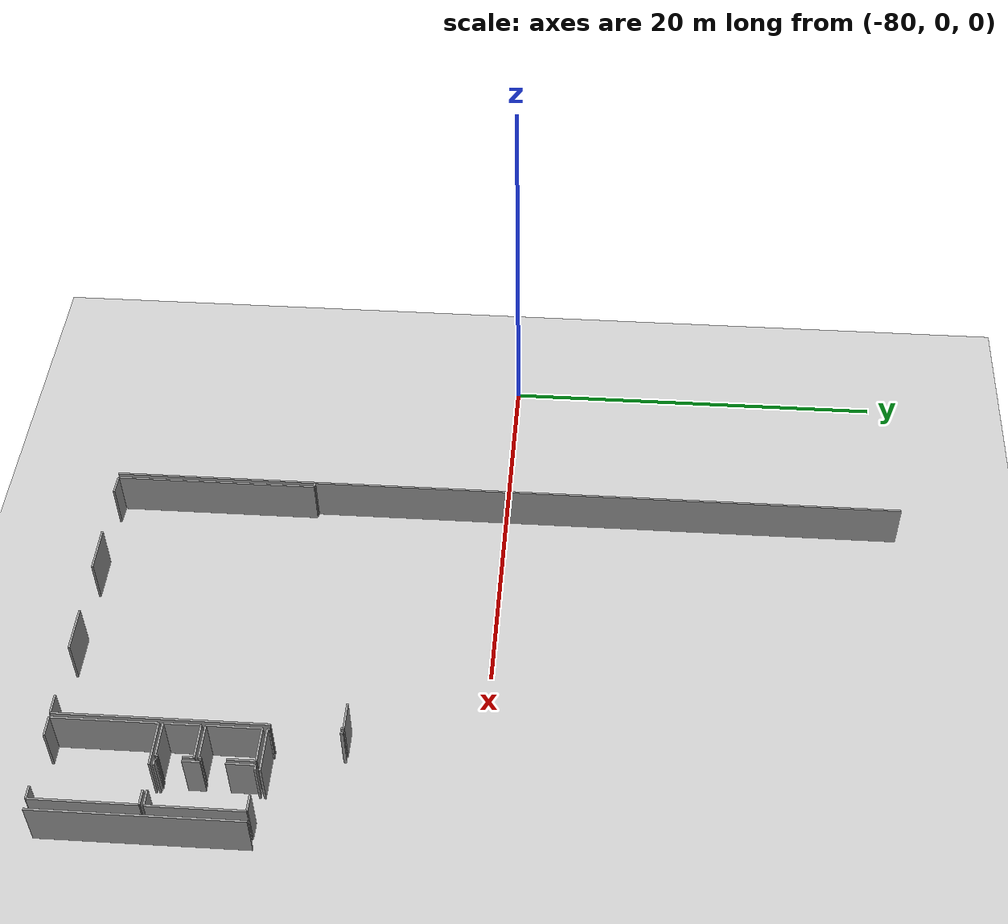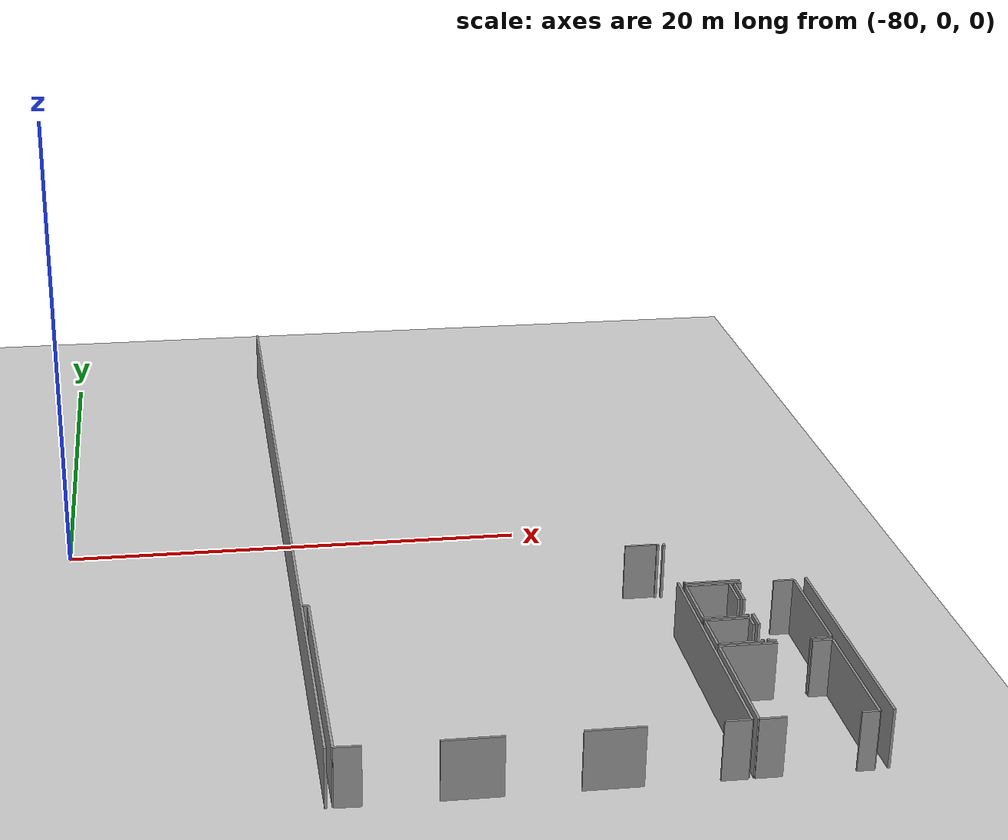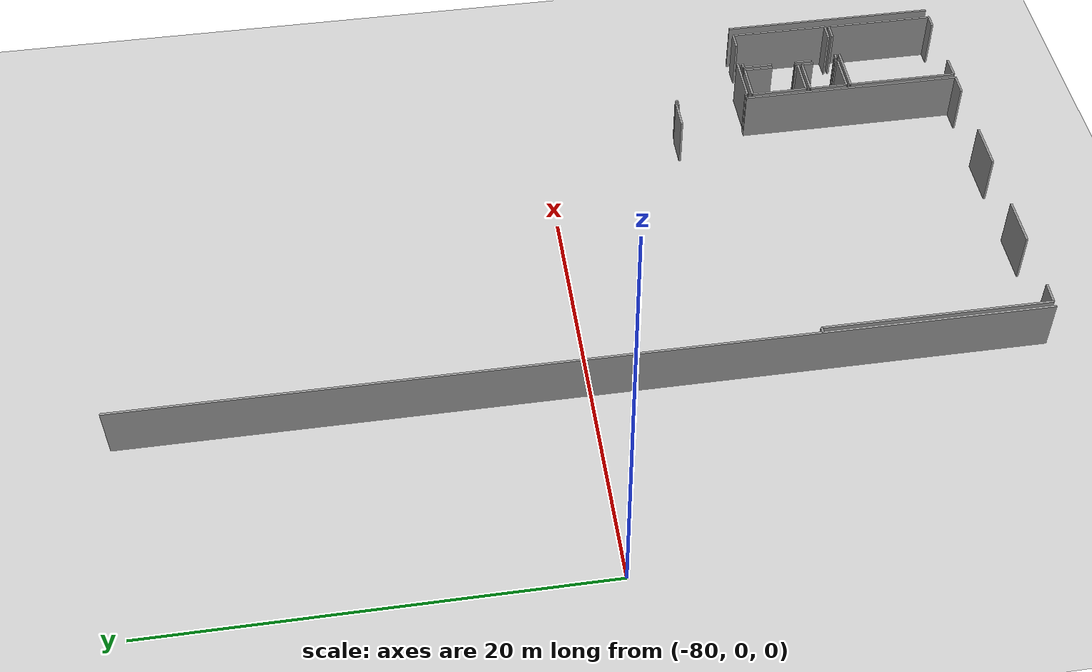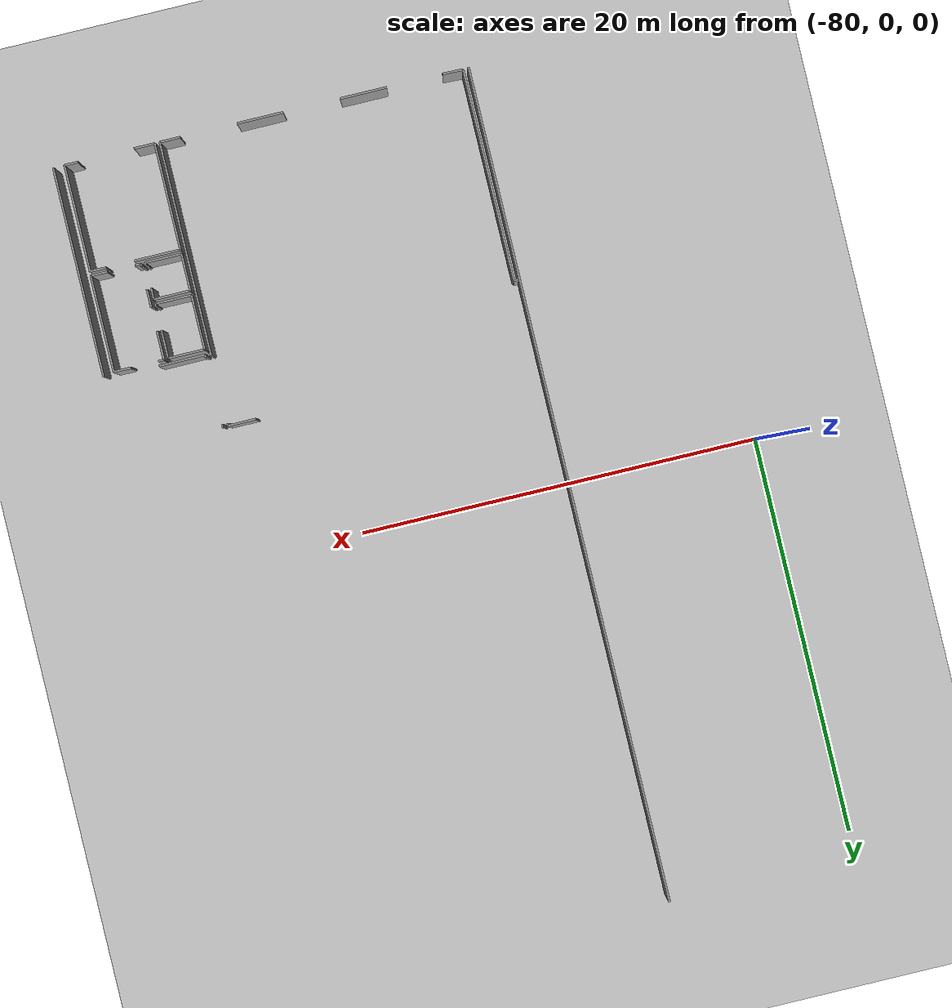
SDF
<sdf version="1.6">
 <world name="default">
  <model name="ground_plane">
   <static>1</static>
   <link name="link">
    <collision name="collision">
     <geometry><plane><normal>0 0 1</normal><size>100 100</size></plane></geometry>
     <surface><friction><ode><mu>100</mu><mu2>50</mu2></ode></friction></surface>
    </collision>
    <visual name="visual">
     <cast_shadows>0</cast_shadows>
     <geometry><plane><normal>0 0 1</normal><size>100 100</size></plane></geometry>
     <material>
      <script><uri>file://media/materials/scripts/gazebo.material</uri><name>Gazebo/Grey</name></script>
     </material>
    </visual>
   </link>
  </model>
  <model name="50055639">
   <static>1</static>
   <link name="Wall_24">
    <collision name="Wall_24_Collision">
     <geometry><box><size>10.5526853603 0.1 2.5</size></box></geometry>
     <pose>5.27634268016 0 1.25 0 0 0</pose>
    </collision>
    <visual name="Wall_24_Visual">
     <pose>5.27634268016 0 1.25 0 0 0</pose>
     <geometry><box><size>10.5526853603 0.1 2.5</size></box></geometry>
     <material>
      <script><uri>file://media/materials/scripts/gazebo.material</uri><name>Gazebo/Grey</name></script>
      <ambient>1 1 1 1</ambient>
     </material>
    </visual>
    <pose>0.276850429683 -41.7007578162 0 0 0 1.57079632679</pose>
   </link>
   <link name="Wall_25">
    <collision name="Wall_25_Collision">
     <geometry><box><size>0.276850429683 0.1 2.5</size></box></geometry>
     <pose>0.138425214842 0 1.25 0 0 0</pose>
    </collision>
    <visual name="Wall_25_Visual">
     <pose>0.138425214842 0 1.25 0 0 0</pose>
     <geometry><box><size>0.276850429683 0.1 2.5</size></box></geometry>
     <material>
      <script><uri>file://media/materials/scripts/gazebo.material</uri><name>Gazebo/Grey</name></script>
      <ambient>1 1 1 1</ambient>
     </material>
    </visual>
    <pose>0.276850429683 -31.1480724559 0 0 0 3.14159265359</pose>
   </link>
   <link name="Wall_36">
    <collision name="Wall_36_Collision">
     <geometry><box><size>1.40430825474 0.1 2.5</size></box></geometry>
     <pose>0.702154127369 0 1.25 0 0 0</pose>
    </collision>
    <visual name="Wall_36_Visual">
     <pose>0.702154127369 0 1.25 0 0 0</pose>
     <geometry><box><size>1.40430825474 0.1 2.5</size></box></geometry>
     <material>
      <script><uri>file://media/materials/scripts/gazebo.material</uri><name>Gazebo/Grey</name></script>
      <ambient>1 1 1 1</ambient>
     </material>
    </visual>
    <pose>14.0518412267 -27.5471128093 0 0 0 0.0</pose>
   </link>
   <link name="Wall_37">
    <collision name="Wall_37_Collision">
     <geometry><box><size>0.126683507026 0.1 2.5</size></box></geometry>
     <pose>0.063341753513 0 1.25 0 0 0</pose>
    </collision>
    <visual name="Wall_37_Visual">
     <pose>0.063341753513 0 1.25 0 0 0</pose>
     <geometry><box><size>0.126683507026 0.1 2.5</size></box></geometry>
     <material>
      <script><uri>file://media/materials/scripts/gazebo.material</uri><name>Gazebo/Grey</name></script>
      <ambient>1 1 1 1</ambient>
     </material>
    </visual>
    <pose>15.4561494815 -27.5471128093 0 0 0 -1.57079632679</pose>
   </link>
   <link name="Wall_38">
    <collision name="Wall_38_Collision">
     <geometry><box><size>10.6836847383 0.1 2.5</size></box></geometry>
     <pose>5.34184236916 0 1.25 0 0 0</pose>
    </collision>
    <visual name="Wall_38_Visual">
     <pose>5.34184236916 0 1.25 0 0 0</pose>
     <geometry><box><size>10.6836847383 0.1 2.5</size></box></geometry>
     <material>
      <script><uri>file://media/materials/scripts/gazebo.material</uri><name>Gazebo/Grey</name></script>
      <ambient>1 1 1 1</ambient>
     </material>
    </visual>
    <pose>15.4561494815 -31.0504576093 0 0 0 -1.57079632679</pose>
   </link>
   <link name="Wall_39">
    <collision name="Wall_39_Collision">
     <geometry><box><size>1.03250866348 0.1 2.5</size></box></geometry>
     <pose>0.516254331738 0 1.25 0 0 0</pose>
    </collision>
    <visual name="Wall_39_Visual">
     <pose>0.516254331738 0 1.25 0 0 0</pose>
     <geometry><box><size>1.03250866348 0.1 2.5</size></box></geometry>
     <material>
      <script><uri>file://media/materials/scripts/gazebo.material</uri><name>Gazebo/Grey</name></script>
      <ambient>1 1 1 1</ambient>
     </material>
    </visual>
    <pose>15.4561494815 -41.7341423476 0 0 0 3.14159265359</pose>
   </link>
   <link name="Wall_40">
    <collision name="Wall_40_Collision">
     <geometry><box><size>2.31191053453 0.1 2.5</size></box></geometry>
     <pose>1.15595526727 0 1.25 0 0 0</pose>
    </collision>
    <visual name="Wall_40_Visual">
     <pose>1.15595526727 0 1.25 0 0 0</pose>
     <geometry><box><size>2.31191053453 0.1 2.5</size></box></geometry>
     <material>
      <script><uri>file://media/materials/scripts/gazebo.material</uri><name>Gazebo/Grey</name></script>
      <ambient>1 1 1 1</ambient>
     </material>
    </visual>
    <pose>11.5858287107 -41.7341423476 0 0 0 3.14159265359</pose>
   </link>
   <link name="Wall_41">
    <collision name="Wall_41_Collision">
     <geometry><box><size>2.34529506594 0.1 2.5</size></box></geometry>
     <pose>1.17264753297 0 1.25 0 0 0</pose>
    </collision>
    <visual name="Wall_41_Visual">
     <pose>1.17264753297 0 1.25 0 0 0</pose>
     <geometry><box><size>2.34529506594 0.1 2.5</size></box></geometry>
     <material>
      <script><uri>file://media/materials/scripts/gazebo.material</uri><name>Gazebo/Grey</name></script>
      <ambient>1 1 1 1</ambient>
     </material>
    </visual>
    <pose>6.44448393607 -41.7341423476 0 0 0 3.14159265359</pose>
   </link>
   <link name="Wall_42">
    <collision name="Wall_42_Collision">
     <geometry><box><size>1.02683157718 0.1 2.5</size></box></geometry>
     <pose>0.51341578859 0 1.25 0 0 0</pose>
    </collision>
    <visual name="Wall_42_Visual">
     <pose>0.51341578859 0 1.25 0 0 0</pose>
     <geometry><box><size>1.02683157718 0.1 2.5</size></box></geometry>
     <material>
      <script><uri>file://media/materials/scripts/gazebo.material</uri><name>Gazebo/Grey</name></script>
      <ambient>1 1 1 1</ambient>
     </material>
    </visual>
    <pose>1.30313916145 -41.7341423476 0 0 0 3.10907474469</pose>
   </link>
   <link name="Wall_43">
    <collision name="Wall_43_Collision">
     <geometry><box><size>0.120717450082 0.1 2.5</size></box></geometry>
     <pose>0.0603587250409 0 1.25 0 0 0</pose>
    </collision>
    <visual name="Wall_43_Visual">
     <pose>0.0603587250409 0 1.25 0 0 0</pose>
     <geometry><box><size>0.120717450082 0.1 2.5</size></box></geometry>
     <material>
      <script><uri>file://media/materials/scripts/gazebo.material</uri><name>Gazebo/Grey</name></script>
      <ambient>1 1 1 1</ambient>
     </material>
    </visual>
    <pose>15.7196714861 -31.164066566 0 0 0 1.57079632679</pose>
   </link>
   <link name="Wall_44">
    <collision name="Wall_44_Collision">
     <geometry><box><size>0.154228918874 0.1 2.5</size></box></geometry>
     <pose>0.0771144594372 0 1.25 0 0 0</pose>
    </collision>
    <visual name="Wall_44_Visual">
     <pose>0.0771144594372 0 1.25 0 0 0</pose>
     <geometry><box><size>0.154228918874 0.1 2.5</size></box></geometry>
     <material>
      <script><uri>file://media/materials/scripts/gazebo.material</uri><name>Gazebo/Grey</name></script>
      <ambient>1 1 1 1</ambient>
     </material>
    </visual>
    <pose>15.7196714861 -27.6776044377 0 0 0 1.57079632679</pose>
   </link>
   <link name="Wall_87">
    <collision name="Wall_87_Collision">
     <geometry><box><size>2.3104069008 0.1 2.5</size></box></geometry>
     <pose>1.1552034504 0 1.25 0 0 0</pose>
    </collision>
    <visual name="Wall_87_Visual">
     <pose>1.1552034504 0 1.25 0 0 0</pose>
     <geometry><box><size>2.3104069008 0.1 2.5</size></box></geometry>
     <material>
      <script><uri>file://media/materials/scripts/gazebo.material</uri><name>Gazebo/Grey</name></script>
      <ambient>1 1 1 1</ambient>
     </material>
    </visual>
    <pose>18.030058772 -31.1545462623 0 0 0 -3.1374720242</pose>
   </link>
   <link name="Wall_169">
    <collision name="Wall_169_Collision">
     <geometry><box><size>10.4309524112 0.1 2.5</size></box></geometry>
     <pose>5.21547620559 0 1.25 0 0 0</pose>
    </collision>
    <visual name="Wall_169_Visual">
     <pose>5.21547620559 0 1.25 0 0 0</pose>
     <geometry><box><size>10.4309524112 0.1 2.5</size></box></geometry>
     <material>
      <script><uri>file://media/materials/scripts/gazebo.material</uri><name>Gazebo/Grey</name></script>
      <ambient>1 1 1 1</ambient>
     </material>
    </visual>
    <pose>20.7807918354 -41.7196714861 0 0 0 1.57079632679</pose>
   </link>
   <link name="Wall_175">
    <collision name="Wall_175_Collision">
     <geometry><box><size>0.103707840922 0.1 2.5</size></box></geometry>
     <pose>0.051853920461 0 1.25 0 0 0</pose>
    </collision>
    <visual name="Wall_175_Visual">
     <pose>0.051853920461 0 1.25 0 0 0</pose>
     <geometry><box><size>0.103707840922 0.1 2.5</size></box></geometry>
     <material>
      <script><uri>file://media/materials/scripts/gazebo.material</uri><name>Gazebo/Grey</name></script>
      <ambient>1 1 1 1</ambient>
     </material>
    </visual>
    <pose>17.7350562967 -36.1863440765 0 0 0 1.57079632679</pose>
   </link>
   <link name="Wall_176">
    <collision name="Wall_176_Collision">
     <geometry><box><size>0.877264245548 0.1 2.5</size></box></geometry>
     <pose>0.438632122774 0 1.25 0 0 0</pose>
    </collision>
    <visual name="Wall_176_Visual">
     <pose>0.438632122774 0 1.25 0 0 0</pose>
     <geometry><box><size>0.877264245548 0.1 2.5</size></box></geometry>
     <material>
      <script><uri>file://media/materials/scripts/gazebo.material</uri><name>Gazebo/Grey</name></script>
      <ambient>1 1 1 1</ambient>
     </material>
    </visual>
    <pose>17.7350562967 -34.9073230176 0 0 0 1.57079632679</pose>
   </link>
   <link name="Wall_177">
    <collision name="Wall_177_Collision">
     <geometry><box><size>1.44429353 0.1 2.5</size></box></geometry>
     <pose>0.722146765001 0 1.25 0 0 0</pose>
    </collision>
    <visual name="Wall_177_Visual">
     <pose>0.722146765001 0 1.25 0 0 0</pose>
     <geometry><box><size>1.44429353 0.1 2.5</size></box></geometry>
     <material>
      <script><uri>file://media/materials/scripts/gazebo.material</uri><name>Gazebo/Grey</name></script>
      <ambient>1 1 1 1</ambient>
     </material>
    </visual>
    <pose>17.7350562967 -32.8391322561 0 0 0 1.57079632679</pose>
   </link>
   <link name="Wall_178">
    <collision name="Wall_178_Collision">
     <geometry><box><size>0.278500615646 0.1 2.5</size></box></geometry>
     <pose>0.139250307823 0 1.25 0 0 0</pose>
    </collision>
    <visual name="Wall_178_Visual">
     <pose>0.139250307823 0 1.25 0 0 0</pose>
     <geometry><box><size>0.278500615646 0.1 2.5</size></box></geometry>
     <material>
      <script><uri>file://media/materials/scripts/gazebo.material</uri><name>Gazebo/Grey</name></script>
      <ambient>1 1 1 1</ambient>
     </material>
    </visual>
    <pose>17.7350562967 -31.3948387261 0 0 0 0.0</pose>
   </link>
   <link name="Wall_179">
    <collision name="Wall_179_Collision">
     <geometry><box><size>0.857969763516 0.1 2.5</size></box></geometry>
     <pose>0.428984881758 0 1.25 0 0 0</pose>
    </collision>
    <visual name="Wall_179_Visual">
     <pose>0.428984881758 0 1.25 0 0 0</pose>
     <geometry><box><size>0.857969763516 0.1 2.5</size></box></geometry>
     <material>
      <script><uri>file://media/materials/scripts/gazebo.material</uri><name>Gazebo/Grey</name></script>
      <ambient>1 1 1 1</ambient>
     </material>
    </visual>
    <pose>19.3834651366 -31.3948387261 0 0 0 0.0</pose>
   </link>
   <link name="Wall_180">
    <collision name="Wall_180_Collision">
     <geometry><box><size>4.80572233717 0.1 2.5</size></box></geometry>
     <pose>2.40286116859 0 1.25 0 0 0</pose>
    </collision>
    <visual name="Wall_180_Visual">
     <pose>2.40286116859 0 1.25 0 0 0</pose>
     <geometry><box><size>4.80572233717 0.1 2.5</size></box></geometry>
     <material>
      <script><uri>file://media/materials/scripts/gazebo.material</uri><name>Gazebo/Grey</name></script>
      <ambient>1 1 1 1</ambient>
     </material>
    </visual>
    <pose>20.2414349002 -31.3948387261 0 0 0 -1.57079632679</pose>
   </link>
   <link name="Wall_181">
    <collision name="Wall_181_Collision">
     <geometry><box><size>0.84337196461 0.1 2.5</size></box></geometry>
     <pose>0.421685982305 0 1.25 0 0 0</pose>
    </collision>
    <visual name="Wall_181_Visual">
     <pose>0.421685982305 0 1.25 0 0 0</pose>
     <geometry><box><size>0.84337196461 0.1 2.5</size></box></geometry>
     <material>
      <script><uri>file://media/materials/scripts/gazebo.material</uri><name>Gazebo/Grey</name></script>
      <ambient>1 1 1 1</ambient>
     </material>
    </visual>
    <pose>20.2414349002 -36.2005610632 0 0 0 3.14159265359</pose>
   </link>
   <link name="Wall_182">
    <collision name="Wall_182_Collision">
     <geometry><box><size>0.299402205777 0.1 2.5</size></box></geometry>
     <pose>0.149701102888 0 1.25 0 0 0</pose>
    </collision>
    <visual name="Wall_182_Visual">
     <pose>0.149701102888 0 1.25 0 0 0</pose>
     <geometry><box><size>0.299402205777 0.1 2.5</size></box></geometry>
     <material>
      <script><uri>file://media/materials/scripts/gazebo.material</uri><name>Gazebo/Grey</name></script>
      <ambient>1 1 1 1</ambient>
     </material>
    </visual>
    <pose>18.0341207682 -36.2005610632 0 0 0 3.09409021499</pose>
   </link>
   <link name="Wall_183">
    <collision name="Wall_183_Collision">
     <geometry><box><size>5.31664529887 0.1 2.5</size></box></geometry>
     <pose>2.65832264944 0 1.25 0 0 0</pose>
    </collision>
    <visual name="Wall_183_Visual">
     <pose>2.65832264944 0 1.25 0 0 0</pose>
     <geometry><box><size>5.31664529887 0.1 2.5</size></box></geometry>
     <material>
      <script><uri>file://media/materials/scripts/gazebo.material</uri><name>Gazebo/Grey</name></script>
      <ambient>1 1 1 1</ambient>
     </material>
    </visual>
    <pose>15.7006308788 -41.7258914178 0 0 0 1.57079632679</pose>
   </link>
   <link name="Wall_184">
    <collision name="Wall_184_Collision">
     <geometry><box><size>2.31191053453 0.1 2.5</size></box></geometry>
     <pose>1.15595526727 0 1.25 0 0 0</pose>
    </collision>
    <visual name="Wall_184_Visual">
     <pose>1.15595526727 0 1.25 0 0 0</pose>
     <geometry><box><size>2.31191053453 0.1 2.5</size></box></geometry>
     <material>
      <script><uri>file://media/materials/scripts/gazebo.material</uri><name>Gazebo/Grey</name></script>
      <ambient>1 1 1 1</ambient>
     </material>
    </visual>
    <pose>15.7006308788 -36.4092461189 0 0 0 0.0</pose>
   </link>
   <link name="Wall_185">
    <collision name="Wall_185_Collision">
     <geometry><box><size>0.805671562218 0.1 2.5</size></box></geometry>
     <pose>0.402835781109 0 1.25 0 0 0</pose>
    </collision>
    <visual name="Wall_185_Visual">
     <pose>0.402835781109 0 1.25 0 0 0</pose>
     <geometry><box><size>0.805671562218 0.1 2.5</size></box></geometry>
     <material>
      <script><uri>file://media/materials/scripts/gazebo.material</uri><name>Gazebo/Grey</name></script>
      <ambient>1 1 1 1</ambient>
     </material>
    </visual>
    <pose>19.4143109204 -36.4092461189 0 0 0 0.0</pose>
   </link>
   <link name="Wall_186">
    <collision name="Wall_186_Collision">
     <geometry><box><size>5.31347186433 0.1 2.5</size></box></geometry>
     <pose>2.65673593216 0 1.25 0 0 0</pose>
    </collision>
    <visual name="Wall_186_Visual">
     <pose>2.65673593216 0 1.25 0 0 0</pose>
     <geometry><box><size>5.31347186433 0.1 2.5</size></box></geometry>
     <material>
      <script><uri>file://media/materials/scripts/gazebo.material</uri><name>Gazebo/Grey</name></script>
      <ambient>1 1 1 1</ambient>
     </material>
    </visual>
    <pose>20.2199824826 -36.4092461189 0 0 0 -1.57079632679</pose>
   </link>
   <link name="Wall_187">
    <collision name="Wall_187_Collision">
     <geometry><box><size>0.67530687112 0.1 2.5</size></box></geometry>
     <pose>0.33765343556 0 1.25 0 0 0</pose>
    </collision>
    <visual name="Wall_187_Visual">
     <pose>0.33765343556 0 1.25 0 0 0</pose>
     <geometry><box><size>0.67530687112 0.1 2.5</size></box></geometry>
     <material>
      <script><uri>file://media/materials/scripts/gazebo.material</uri><name>Gazebo/Grey</name></script>
      <ambient>1 1 1 1</ambient>
     </material>
    </visual>
    <pose>20.2199824826 -41.7227179832 0 0 0 3.14159265359</pose>
   </link>
   <link name="Wall_188">
    <collision name="Wall_188_Collision">
     <geometry><box><size>1.04520721922 0.1 2.5</size></box></geometry>
     <pose>0.522603609611 0 1.25 0 0 0</pose>
    </collision>
    <visual name="Wall_188_Visual">
     <pose>0.522603609611 0 1.25 0 0 0</pose>
     <geometry><box><size>1.04520721922 0.1 2.5</size></box></geometry>
     <material>
      <script><uri>file://media/materials/scripts/gazebo.material</uri><name>Gazebo/Grey</name></script>
      <ambient>1 1 1 1</ambient>
     </material>
    </visual>
    <pose>16.7458332804 -41.7227179832 0 0 0 -3.13855647152</pose>
   </link>
   <link name="Wall_189">
    <collision name="Wall_189_Collision">
     <geometry><box><size>1.84287690882 0.1 2.5</size></box></geometry>
     <pose>0.92143845441 0 1.25 0 0 0</pose>
    </collision>
    <visual name="Wall_189_Visual">
     <pose>0.92143845441 0 1.25 0 0 0</pose>
     <geometry><box><size>1.84287690882 0.1 2.5</size></box></geometry>
     <material>
      <script><uri>file://media/materials/scripts/gazebo.material</uri><name>Gazebo/Grey</name></script>
      <ambient>1 1 1 1</ambient>
     </material>
    </visual>
    <pose>15.697711319 -36.2047499968 0 0 0 1.57079632679</pose>
   </link>
   <link name="Wall_190">
    <collision name="Wall_190_Collision">
     <geometry><box><size>1.82358242679 0.1 2.5</size></box></geometry>
     <pose>0.911791213394 0 1.25 0 0 0</pose>
    </collision>
    <visual name="Wall_190_Visual">
     <pose>0.911791213394 0 1.25 0 0 0</pose>
     <geometry><box><size>1.82358242679 0.1 2.5</size></box></geometry>
     <material>
      <script><uri>file://media/materials/scripts/gazebo.material</uri><name>Gazebo/Grey</name></script>
      <ambient>1 1 1 1</ambient>
     </material>
    </visual>
    <pose>15.697711319 -34.361873088 0 0 0 0.0</pose>
   </link>
   <link name="Wall_191">
    <collision name="Wall_191_Collision">
     <geometry><box><size>0.566267660163 0.1 2.5</size></box></geometry>
     <pose>0.283133830082 0 1.25 0 0 0</pose>
    </collision>
    <visual name="Wall_191_Visual">
     <pose>0.283133830082 0 1.25 0 0 0</pose>
     <geometry><box><size>0.566267660163 0.1 2.5</size></box></geometry>
     <material>
      <script><uri>file://media/materials/scripts/gazebo.material</uri><name>Gazebo/Grey</name></script>
      <ambient>1 1 1 1</ambient>
     </material>
    </visual>
    <pose>17.5212937458 -34.361873088 0 0 0 -1.57079632679</pose>
   </link>
   <link name="Wall_192">
    <collision name="Wall_192_Collision">
     <geometry><box><size>0.119955825791 0.1 2.5</size></box></geometry>
     <pose>0.0599779128956 0 1.25 0 0 0</pose>
    </collision>
    <visual name="Wall_192_Visual">
     <pose>0.0599779128956 0 1.25 0 0 0</pose>
     <geometry><box><size>0.119955825791 0.1 2.5</size></box></geometry>
     <material>
      <script><uri>file://media/materials/scripts/gazebo.material</uri><name>Gazebo/Grey</name></script>
      <ambient>1 1 1 1</ambient>
     </material>
    </visual>
    <pose>17.5212937458 -36.0874598561 0 0 0 -1.57079632679</pose>
   </link>
   <link name="Wall_193">
    <collision name="Wall_193_Collision">
     <geometry><box><size>1.82358437512 0.1 2.5</size></box></geometry>
     <pose>0.911792187558 0 1.25 0 0 0</pose>
    </collision>
    <visual name="Wall_193_Visual">
     <pose>0.911792187558 0 1.25 0 0 0</pose>
     <geometry><box><size>1.82358437512 0.1 2.5</size></box></geometry>
     <material>
      <script><uri>file://media/materials/scripts/gazebo.material</uri><name>Gazebo/Grey</name></script>
      <ambient>1 1 1 1</ambient>
     </material>
    </visual>
    <pose>17.5212937458 -36.2074156818 0 0 0 3.14013086986</pose>
   </link>
   <link name="Wall_194">
    <collision name="Wall_194_Collision">
     <geometry><box><size>2.72001421699 0.1 2.5</size></box></geometry>
     <pose>1.36000710849 0 1.25 0 0 0</pose>
    </collision>
    <visual name="Wall_194_Visual">
     <pose>1.36000710849 0 1.25 0 0 0</pose>
     <geometry><box><size>2.72001421699 0.1 2.5</size></box></geometry>
     <material>
      <script><uri>file://media/materials/scripts/gazebo.material</uri><name>Gazebo/Grey</name></script>
      <ambient>1 1 1 1</ambient>
     </material>
    </visual>
    <pose>15.6927607611 -34.1373208596 0 0 0 1.57079632679</pose>
   </link>
   <link name="Wall_195">
    <collision name="Wall_195_Collision">
     <geometry><box><size>1.82383630155 0.1 2.5</size></box></geometry>
     <pose>0.911918150776 0 1.25 0 0 0</pose>
    </collision>
    <visual name="Wall_195_Visual">
     <pose>0.911918150776 0 1.25 0 0 0</pose>
     <geometry><box><size>1.82383630155 0.1 2.5</size></box></geometry>
     <material>
      <script><uri>file://media/materials/scripts/gazebo.material</uri><name>Gazebo/Grey</name></script>
      <ambient>1 1 1 1</ambient>
     </material>
    </visual>
    <pose>15.6927607611 -31.4173066426 0 0 0 0.0</pose>
   </link>
   <link name="Wall_196">
    <collision name="Wall_196_Collision">
     <geometry><box><size>1.4073547519 0.1 2.5</size></box></geometry>
     <pose>0.70367737595 0 1.25 0 0 0</pose>
    </collision>
    <visual name="Wall_196_Visual">
     <pose>0.70367737595 0 1.25 0 0 0</pose>
     <geometry><box><size>1.4073547519 0.1 2.5</size></box></geometry>
     <material>
      <script><uri>file://media/materials/scripts/gazebo.material</uri><name>Gazebo/Grey</name></script>
      <ambient>1 1 1 1</ambient>
     </material>
    </visual>
    <pose>17.5165970627 -31.4173066426 0 0 0 -1.57079632679</pose>
   </link>
   <link name="Wall_197">
    <collision name="Wall_197_Collision">
     <geometry><box><size>0.130618565861 0.1 2.5</size></box></geometry>
     <pose>0.0653092829307 0 1.25 0 0 0</pose>
    </collision>
    <visual name="Wall_197_Visual">
     <pose>0.0653092829307 0 1.25 0 0 0</pose>
     <geometry><box><size>0.130618565861 0.1 2.5</size></box></geometry>
     <material>
      <script><uri>file://media/materials/scripts/gazebo.material</uri><name>Gazebo/Grey</name></script>
      <ambient>1 1 1 1</ambient>
     </material>
    </visual>
    <pose>17.5165970627 -34.0149532236 0 0 0 -1.57079632679</pose>
   </link>
   <link name="Wall_198">
    <collision name="Wall_198_Collision">
     <geometry><box><size>1.82385496482 0.1 2.5</size></box></geometry>
     <pose>0.911927482411 0 1.25 0 0 0</pose>
    </collision>
    <visual name="Wall_198_Visual">
     <pose>0.911927482411 0 1.25 0 0 0</pose>
     <geometry><box><size>1.82385496482 0.1 2.5</size></box></geometry>
     <material>
      <script><uri>file://media/materials/scripts/gazebo.material</uri><name>Gazebo/Grey</name></script>
      <ambient>1 1 1 1</ambient>
     </material>
    </visual>
    <pose>17.5165970627 -34.1455717894 0 0 0 3.13706874236</pose>
   </link>
   <link name="Wall_529">
    <collision name="Wall_529_Collision">
     <geometry><box><size>41.7483593343 0.1 2.5</size></box></geometry>
     <pose>20.8741796672 0 1.25 0 0 0</pose>
    </collision>
    <visual name="Wall_529_Visual">
     <pose>20.8741796672 0 1.25 0 0 0</pose>
     <geometry><box><size>41.7483593343 0.1 2.5</size></box></geometry>
     <material>
      <script><uri>file://media/materials/scripts/gazebo.material</uri><name>Gazebo/Grey</name></script>
      <ambient>1 1 1 1</ambient>
     </material>
    </visual>
    <pose>0.0 -41.7483593343 0 0 0 1.57079632679</pose>
   </link>
   <pose>-70.4 20.8983593343 0 0 0 0</pose>
  </model>
 </world>
</sdf>
